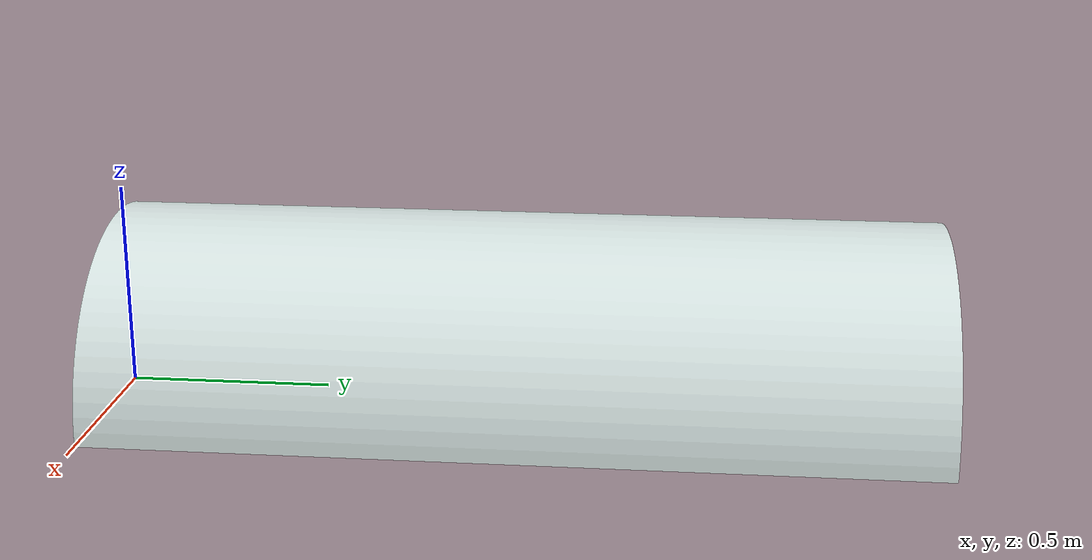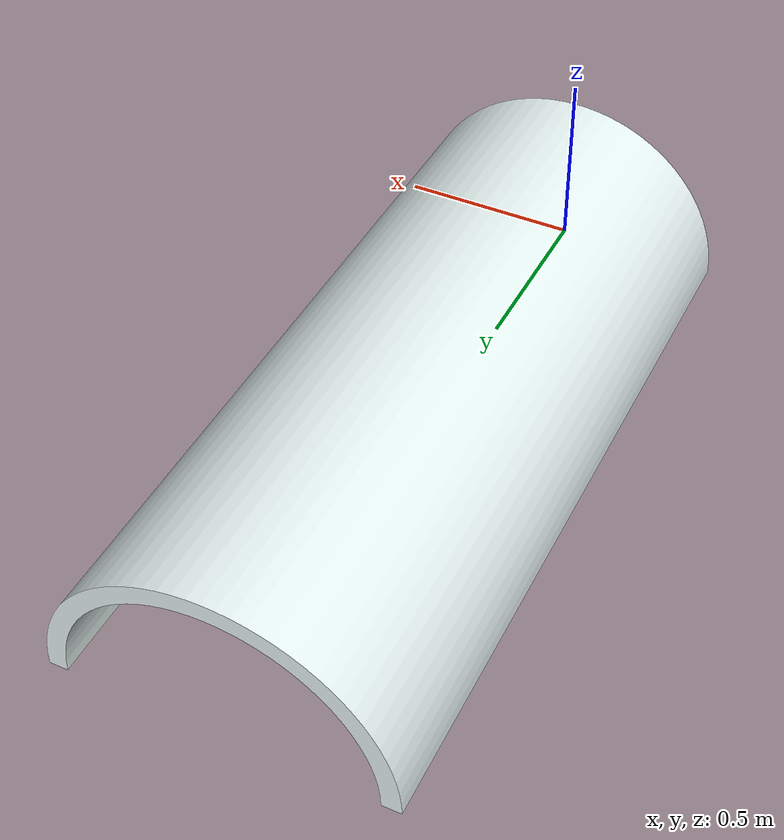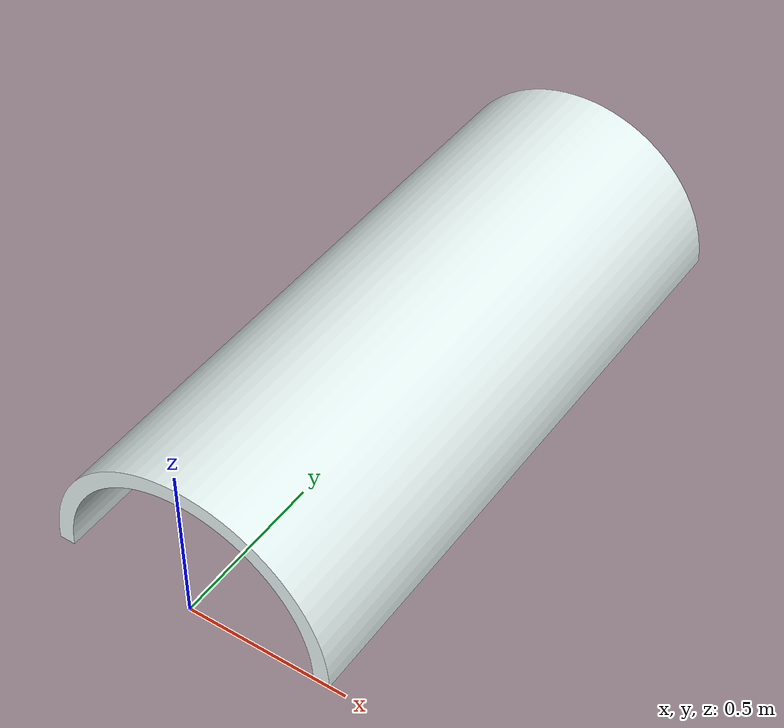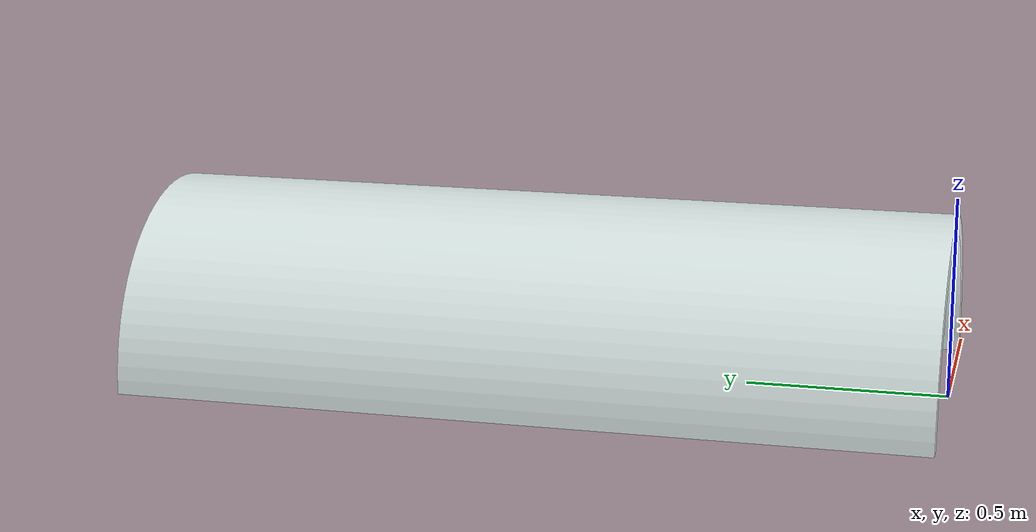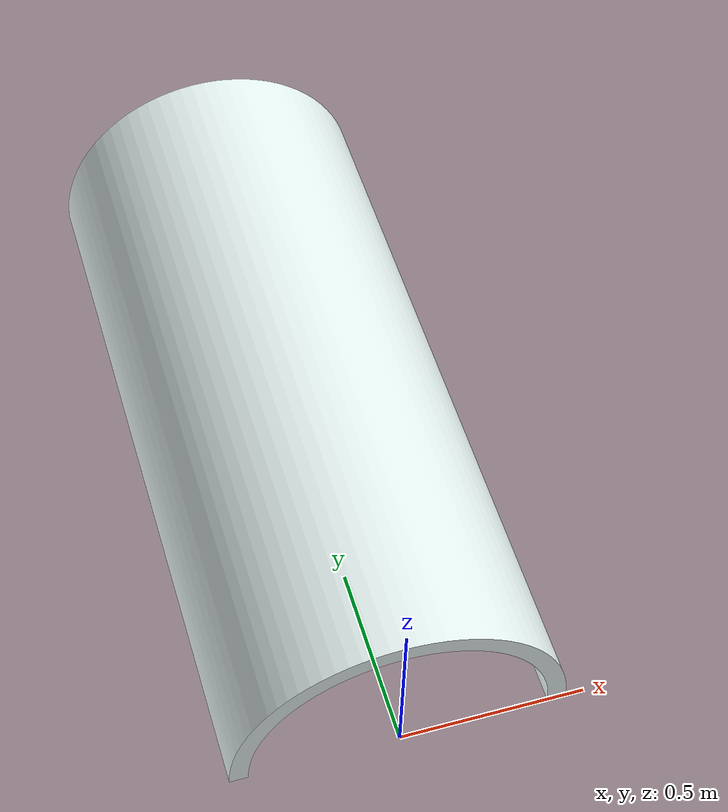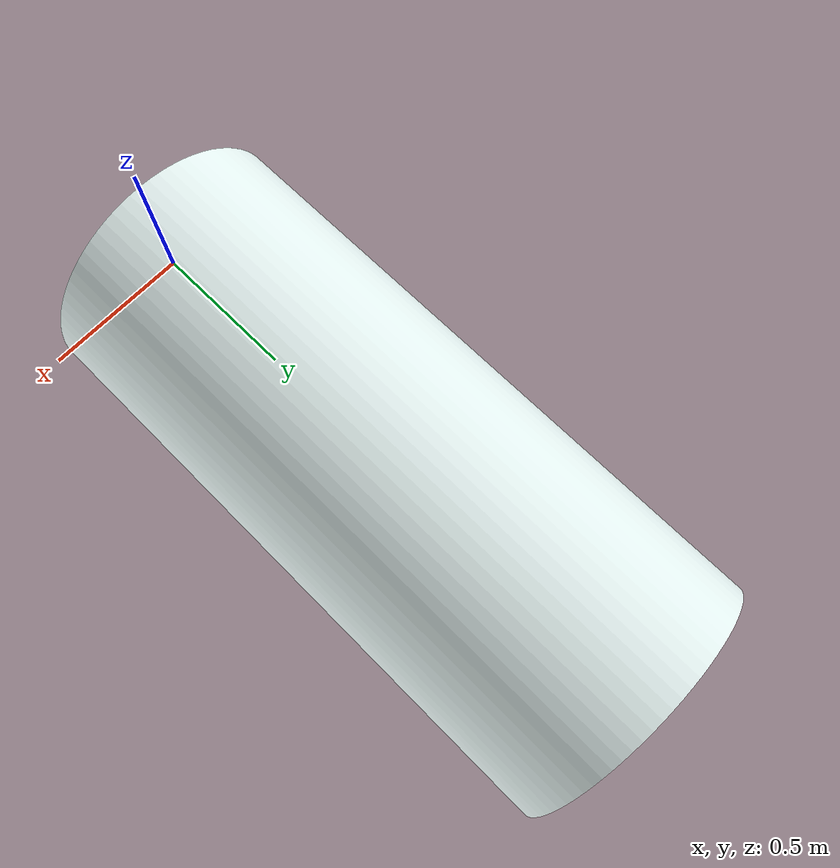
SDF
<?xml version="1.0" ?>
<sdf version="1.5">
  <model name="unknown_tunnel_2">
    <static>true</static>
    <link name="link">
      <pose>0 0 0 0 0 0</pose>
      <collision name="collision">
        <geometry>
            <mesh>
              <uri>
                model://unknown_tunnel_2/mesh/tunnel_short.stl
              </uri>
              <scale>
                0.001 0.001 0.001
              </scale>
            </mesh>
        </geometry>
      </collision>
      <visual name="visual">
        <cast_shadows>true</cast_shadows>
        <geometry>
            <mesh>
              <uri>
                model://unknown_tunnel_2/mesh/tunnel_short.stl
              </uri>
              <scale>
                0.001 0.001 0.001
              </scale>
            </mesh>
        </geometry>
        <material> <!-- color white -->
          <ambient>0.9059 0.9608 0.9529 1</ambient>
          <diffuse>0.9059 0.9608 0.9529 1</diffuse>
          <specular>0 0 0 0</specular>
          <emissive>0 0 0 1</emissive>
        </material>
      </visual>
    </link>
  </model>
</sdf>
